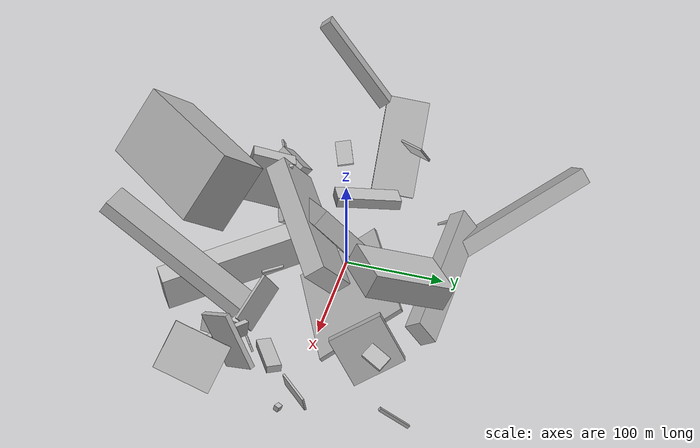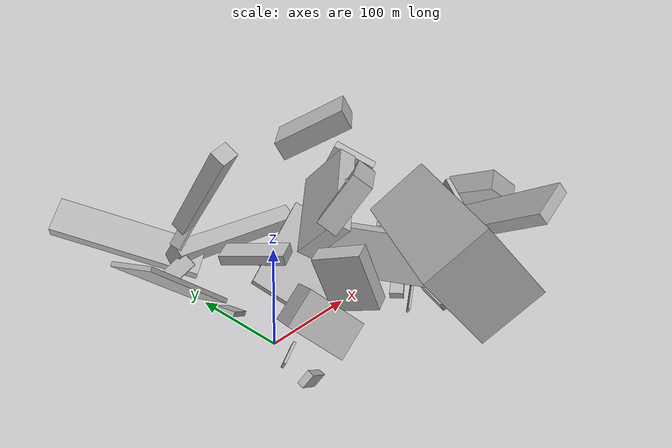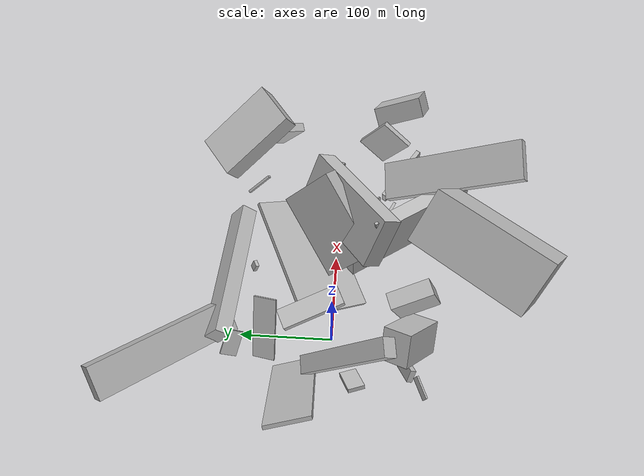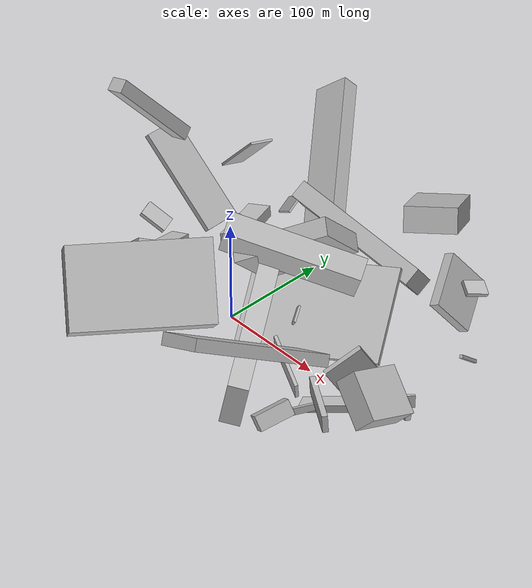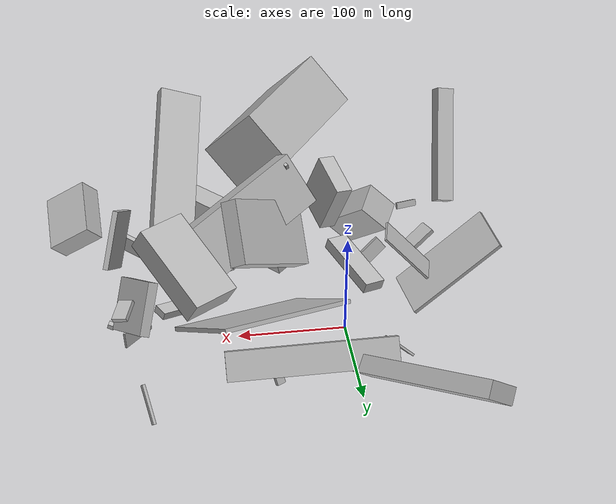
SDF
<sdf version="1.6">
 <world name="default">
  <model name="building_1">
   <static>0</static>
   <pose>-15.40946905120093 48.489235072548475 83.47796572263684 0.6606610286150101 1.3319498400195333 -0.47602117565657454</pose>
   <link name="link">
    <gravity>0</gravity>
    <pose>0 0 31.5 0 0 0</pose>
    <collision name="collision"><geometry><box><size>10 20 63</size></box></geometry></collision>
    <visual name="visual">
     <cast_shadows>0</cast_shadows>
     <geometry><box><size>10 20 63</size></box></geometry>
     <material>
      <script>
       <uri>model://HANNAS_wall/materials/scripts</uri>
       <uri>model://HANNAS_wall/materials/textures</uri>
       <name>vrc/HANNAS_wall</name>
      </script>
     </material>
    </visual>
   </link>
  </model>
  <model name="building_5">
   <static>0</static>
   <pose>4.289686830241401 106.98644001515282 44.70392333417334 -1.091598469408559 0.807118646782974 1.0866225300215115</pose>
   <link name="link">
    <gravity>0</gravity>
    <pose>0 0 75.0 0 0 0</pose>
    <collision name="collision"><geometry><box><size>16 34 150</size></box></geometry></collision>
    <visual name="visual">
     <cast_shadows>0</cast_shadows>
     <geometry><box><size>16 34 150</size></box></geometry>
     <material>
      <script>
       <uri>model://HANNAS_wall/materials/scripts</uri>
       <uri>model://HANNAS_wall/materials/textures</uri>
       <name>vrc/HANNAS_wall</name>
      </script>
     </material>
    </visual>
   </link>
  </model>
  <model name="building_6">
   <static>0</static>
   <pose>122.95587060061723 104.81987621062243 53.38466403227626 1.4836463431051559 -0.9303164788773728 -1.551403772637376</pose>
   <link name="link">
    <gravity>0</gravity>
    <pose>0 0 75.0 0 0 0</pose>
    <collision name="collision"><geometry><box><size>26 17 150</size></box></geometry></collision>
    <visual name="visual">
     <cast_shadows>0</cast_shadows>
     <geometry><box><size>26 17 150</size></box></geometry>
     <material>
      <script>
       <uri>model://HANNAS_wall/materials/scripts</uri>
       <uri>model://HANNAS_wall/materials/textures</uri>
       <name>vrc/HANNAS_wall</name>
      </script>
     </material>
    </visual>
   </link>
  </model>
  <model name="building_13">
   <static>0</static>
   <pose>98.34963933505558 -73.62403496290293 56.5721595581413 -0.11014615248948859 -0.19115786663829787 -2.481758304729141</pose>
   <link name="link">
    <gravity>0</gravity>
    <pose>0 0 22.5 0 0 0</pose>
    <collision name="collision"><geometry><box><size>18 150 45</size></box></geometry></collision>
    <visual name="visual">
     <cast_shadows>0</cast_shadows>
     <geometry><box><size>18 150 45</size></box></geometry>
     <material>
      <script>
       <uri>model://HANNAS_wall/materials/scripts</uri>
       <uri>model://HANNAS_wall/materials/textures</uri>
       <name>vrc/HANNAS_wall</name>
      </script>
     </material>
    </visual>
   </link>
  </model>
  <model name="building_16">
   <static>0</static>
   <pose>155.37633494674714 -52.24556168026713 80.04553700217986 0.9869160135221994 -0.36446205391433656 0.06837988870615896</pose>
   <link name="link">
    <gravity>0</gravity>
    <pose>0 0 75.0 0 0 0</pose>
    <collision name="collision"><geometry><box><size>40 11 150</size></box></geometry></collision>
    <visual name="visual">
     <cast_shadows>0</cast_shadows>
     <geometry><box><size>40 11 150</size></box></geometry>
     <material>
      <script>
       <uri>model://HANNAS_wall/materials/scripts</uri>
       <uri>model://HANNAS_wall/materials/textures</uri>
       <name>vrc/HANNAS_wall</name>
      </script>
     </material>
    </visual>
   </link>
  </model>
  <model name="building_23">
   <static>0</static>
   <pose>80.61699406453974 -93.43775193594135 138.2223505600222 -1.549271311401299 0.7446437284315558 2.5178109987744084</pose>
   <link name="link">
    <gravity>0</gravity>
    <pose>0 0 60.5 0 0 0</pose>
    <collision name="collision"><geometry><box><size>55 71 121</size></box></geometry></collision>
    <visual name="visual">
     <cast_shadows>0</cast_shadows>
     <geometry><box><size>55 71 121</size></box></geometry>
     <material>
      <script>
       <uri>model://HANNAS_wall/materials/scripts</uri>
       <uri>model://HANNAS_wall/materials/textures</uri>
       <name>vrc/HANNAS_wall</name>
      </script>
     </material>
    </visual>
   </link>
  </model>
  <model name="building_48">
   <static>0</static>
   <pose>80.46253854953413 26.82059748431923 41.625632989670194 0.19988512551552537 0.5365792366010784 -1.025870557734511</pose>
   <link name="link">
    <gravity>0</gravity>
    <pose>0 0 2.0 0 0 0</pose>
    <collision name="collision"><geometry><box><size>88 134 4</size></box></geometry></collision>
    <visual name="visual">
     <cast_shadows>0</cast_shadows>
     <geometry><box><size>88 134 4</size></box></geometry>
     <material>
      <script>
       <uri>model://HANNAS_wall/materials/scripts</uri>
       <uri>model://HANNAS_wall/materials/textures</uri>
       <name>vrc/HANNAS_wall</name>
      </script>
     </material>
    </visual>
   </link>
  </model>
  <model name="building_54">
   <static>0</static>
   <pose>-80.05383213189403 17.00630412462531 148.08835003347357 0.2850615688530017 0.6435261340882933 -1.2664166484833295</pose>
   <link name="link">
    <gravity>0</gravity>
    <pose>0 0 49.5 0 0 0</pose>
    <collision name="collision"><geometry><box><size>12 15 99</size></box></geometry></collision>
    <visual name="visual">
     <cast_shadows>0</cast_shadows>
     <geometry><box><size>12 15 99</size></box></geometry>
     <material>
      <script>
       <uri>model://HANNAS_wall/materials/scripts</uri>
       <uri>model://HANNAS_wall/materials/textures</uri>
       <name>vrc/HANNAS_wall</name>
      </script>
     </material>
    </visual>
   </link>
  </model>
  <model name="building_55">
   <static>0</static>
   <pose>156.18679675433722 -37.46236960588267 15.659394102046134 1.995067630508451 -1.3264599779774964 -3.0171825056131585</pose>
   <link name="link">
    <gravity>0</gravity>
    <pose>0 0 7.0 0 0 0</pose>
    <collision name="collision"><geometry><box><size>7 45 14</size></box></geometry></collision>
    <visual name="visual">
     <cast_shadows>0</cast_shadows>
     <geometry><box><size>7 45 14</size></box></geometry>
     <material>
      <script>
       <uri>model://HANNAS_wall/materials/scripts</uri>
       <uri>model://HANNAS_wall/materials/textures</uri>
       <name>vrc/HANNAS_wall</name>
      </script>
     </material>
    </visual>
   </link>
  </model>
  <model name="building_58">
   <static>0</static>
   <pose>-48.60329342203451 33.530997850438666 58.62351419822461 -0.8371402605545655 0.19283518145717943 1.7834337465432335</pose>
   <link name="link">
    <gravity>0</gravity>
    <pose>0 0 49.0 0 0 0</pose>
    <collision name="collision"><geometry><box><size>43 4 98</size></box></geometry></collision>
    <visual name="visual">
     <cast_shadows>0</cast_shadows>
     <geometry><box><size>43 4 98</size></box></geometry>
     <material>
      <script>
       <uri>model://HANNAS_wall/materials/scripts</uri>
       <uri>model://HANNAS_wall/materials/textures</uri>
       <name>vrc/HANNAS_wall</name>
      </script>
     </material>
    </visual>
   </link>
  </model>
  <model name="building_66">
   <static>0</static>
   <pose>206.36857441218416 84.99798209384137 105.91505665190452 -0.3056437334058563 0.2943091938593217 -0.4847127867527309</pose>
   <link name="link">
    <gravity>0</gravity>
    <pose>0 0 2.0 0 0 0</pose>
    <collision name="collision"><geometry><box><size>14 20 4</size></box></geometry></collision>
    <visual name="visual">
     <cast_shadows>0</cast_shadows>
     <geometry><box><size>14 20 4</size></box></geometry>
     <material>
      <script>
       <uri>model://HANNAS_wall/materials/scripts</uri>
       <uri>model://HANNAS_wall/materials/textures</uri>
       <name>vrc/HANNAS_wall</name>
      </script>
     </material>
    </visual>
   </link>
  </model>
  <model name="building_67">
   <static>0</static>
   <pose>236.26912871465848 -69.207291003848 92.83981992433951 0.679971490077157 0.40630839485512343 1.5900715310694389</pose>
   <link name="link">
    <gravity>0</gravity>
    <pose>0 0 10.5 0 0 0</pose>
    <collision name="collision"><geometry><box><size>51 43 21</size></box></geometry></collision>
    <visual name="visual">
     <cast_shadows>0</cast_shadows>
     <geometry><box><size>51 43 21</size></box></geometry>
     <material>
      <script>
       <uri>model://HANNAS_wall/materials/scripts</uri>
       <uri>model://HANNAS_wall/materials/textures</uri>
       <name>vrc/HANNAS_wall</name>
      </script>
     </material>
    </visual>
   </link>
  </model>
  <model name="building_68">
   <static>0</static>
   <pose>136.2314211095566 22.1531504785535 112.04480507822103 -1.2645274393351569 -0.5604713890313074 2.0086209131815425</pose>
   <link name="link">
    <gravity>0</gravity>
    <pose>0 0 60.0 0 0 0</pose>
    <collision name="collision"><geometry><box><size>20 51 120</size></box></geometry></collision>
    <visual name="visual">
     <cast_shadows>0</cast_shadows>
     <geometry><box><size>20 51 120</size></box></geometry>
     <material>
      <script>
       <uri>model://HANNAS_wall/materials/scripts</uri>
       <uri>model://HANNAS_wall/materials/textures</uri>
       <name>vrc/HANNAS_wall</name>
      </script>
     </material>
    </visual>
   </link>
  </model>
  <model name="building_70">
   <static>0</static>
   <pose>69.45376618046348 8.531860798503935 122.56746418063062 2.436321279952977 0.799773913681341 1.6649473739104743</pose>
   <link name="link">
    <gravity>0</gravity>
    <pose>0 0 8.5 0 0 0</pose>
    <collision name="collision"><geometry><box><size>58 88 17</size></box></geometry></collision>
    <visual name="visual">
     <cast_shadows>0</cast_shadows>
     <geometry><box><size>58 88 17</size></box></geometry>
     <material>
      <script>
       <uri>model://HANNAS_wall/materials/scripts</uri>
       <uri>model://HANNAS_wall/materials/textures</uri>
       <name>vrc/HANNAS_wall</name>
      </script>
     </material>
    </visual>
   </link>
  </model>
  <model name="building_79">
   <static>0</static>
   <pose>-30.995983453410073 -88.07443100885594 80.44082790525438 2.050788573550083 -0.6550917459019588 2.3577022883496452</pose>
   <link name="link">
    <gravity>0</gravity>
    <pose>0 0 14.5 0 0 0</pose>
    <collision name="collision"><geometry><box><size>53 33 29</size></box></geometry></collision>
    <visual name="visual">
     <cast_shadows>0</cast_shadows>
     <geometry><box><size>53 33 29</size></box></geometry>
     <material>
      <script>
       <uri>model://HANNAS_wall/materials/scripts</uri>
       <uri>model://HANNAS_wall/materials/textures</uri>
       <name>vrc/HANNAS_wall</name>
      </script>
     </material>
    </visual>
   </link>
  </model>
  <model name="building_88">
   <static>0</static>
   <pose>13.241561816284616 -84.5823883472393 76.72956523800377 -0.3337596357875748 -0.15905872641439406 0.343769307282082</pose>
   <link name="link">
    <gravity>0</gravity>
    <pose>0 0 26.0 0 0 0</pose>
    <collision name="collision"><geometry><box><size>16 42 52</size></box></geometry></collision>
    <visual name="visual">
     <cast_shadows>0</cast_shadows>
     <geometry><box><size>16 42 52</size></box></geometry>
     <material>
      <script>
       <uri>model://HANNAS_wall/materials/scripts</uri>
       <uri>model://HANNAS_wall/materials/textures</uri>
       <name>vrc/HANNAS_wall</name>
      </script>
     </material>
    </visual>
   </link>
  </model>
  <model name="building_97">
   <static>0</static>
   <pose>70.67258551537222 88.15458058908979 21.701097660683825 1.6948431244442042 1.089427934967056 2.1486880990023467</pose>
   <link name="link">
    <gravity>0</gravity>
    <pose>0 0 4.0 0 0 0</pose>
    <collision name="collision"><geometry><box><size>9 4 8</size></box></geometry></collision>
    <visual name="visual">
     <cast_shadows>0</cast_shadows>
     <geometry><box><size>9 4 8</size></box></geometry>
     <material>
      <script>
       <uri>model://HANNAS_wall/materials/scripts</uri>
       <uri>model://HANNAS_wall/materials/textures</uri>
       <name>vrc/HANNAS_wall</name>
      </script>
     </material>
    </visual>
   </link>
  </model>
  <model name="building_99">
   <static>0</static>
   <pose>201.8821804488873 87.42141000606843 84.74661941358139 -0.5004963259816101 -0.4405444479841879 2.075715463386686</pose>
   <link name="link">
    <gravity>0</gravity>
    <pose>0 0 23.0 0 0 0</pose>
    <collision name="collision"><geometry><box><size>49 9 46</size></box></geometry></collision>
    <visual name="visual">
     <cast_shadows>0</cast_shadows>
     <geometry><box><size>49 9 46</size></box></geometry>
     <material>
      <script>
       <uri>model://HANNAS_wall/materials/scripts</uri>
       <uri>model://HANNAS_wall/materials/textures</uri>
       <name>vrc/HANNAS_wall</name>
      </script>
     </material>
    </visual>
   </link>
  </model>
  <model name="building_103">
   <static>0</static>
   <pose>-81.48954208654484 -90.74629809255713 72.93078899991801 -1.2257197509170887 -1.1033720912877427 -1.4648821203056674</pose>
   <link name="link">
    <gravity>0</gravity>
    <pose>0 0 11.0 0 0 0</pose>
    <collision name="collision"><geometry><box><size>6 2 22</size></box></geometry></collision>
    <visual name="visual">
     <cast_shadows>0</cast_shadows>
     <geometry><box><size>6 2 22</size></box></geometry>
     <material>
      <script>
       <uri>model://HANNAS_wall/materials/scripts</uri>
       <uri>model://HANNAS_wall/materials/textures</uri>
       <name>vrc/HANNAS_wall</name>
      </script>
     </material>
    </visual>
   </link>
  </model>
  <model name="building_111">
   <static>0</static>
   <pose>140.31752526973222 -56.83170109118494 18.8012843312871 2.619992918455076 -0.22146936750861623 2.196610769310587</pose>
   <link name="link">
    <gravity>0</gravity>
    <pose>0 0 4.0 0 0 0</pose>
    <collision name="collision"><geometry><box><size>2 41 8</size></box></geometry></collision>
    <visual name="visual">
     <cast_shadows>0</cast_shadows>
     <geometry><box><size>2 41 8</size></box></geometry>
     <material>
      <script>
       <uri>model://HANNAS_wall/materials/scripts</uri>
       <uri>model://HANNAS_wall/materials/textures</uri>
       <name>vrc/HANNAS_wall</name>
      </script>
     </material>
    </visual>
   </link>
  </model>
  <model name="building_125">
   <static>0</static>
   <pose>51.985653175898065 -38.000208938351314 162.10600013467663 3.0534058186627764 0.3005348341597385 0.49769247578533526</pose>
   <link name="link">
    <gravity>0</gravity>
    <pose>0 0 7.0 0 0 0</pose>
    <collision name="collision"><geometry><box><size>3 5 14</size></box></geometry></collision>
    <visual name="visual">
     <cast_shadows>0</cast_shadows>
     <geometry><box><size>3 5 14</size></box></geometry>
     <material>
      <script>
       <uri>model://HANNAS_wall/materials/scripts</uri>
       <uri>model://HANNAS_wall/materials/textures</uri>
       <name>vrc/HANNAS_wall</name>
      </script>
     </material>
    </visual>
   </link>
  </model>
  <model name="building_128">
   <static>0</static>
   <pose>-30.584149638863096 97.73284862911744 55.55224670819952 -2.477087786747604 -0.613300651380852 -0.32569316392600334</pose>
   <link name="link">
    <gravity>0</gravity>
    <pose>0 0 1.0 0 0 0</pose>
    <collision name="collision"><geometry><box><size>26 17 2</size></box></geometry></collision>
    <visual name="visual">
     <cast_shadows>0</cast_shadows>
     <geometry><box><size>26 17 2</size></box></geometry>
     <material>
      <script>
       <uri>model://HANNAS_wall/materials/scripts</uri>
       <uri>model://HANNAS_wall/materials/textures</uri>
       <name>vrc/HANNAS_wall</name>
      </script>
     </material>
    </visual>
   </link>
  </model>
  <model name="building_139">
   <static>0</static>
   <pose>217.31726785374093 1.140584887513841 23.88861137151204 1.0836899342227186 1.237302452437148 -0.8502745471359223</pose>
   <link name="link">
    <gravity>0</gravity>
    <pose>0 0 2.5 0 0 0</pose>
    <collision name="collision"><geometry><box><size>5 6 5</size></box></geometry></collision>
    <visual name="visual">
     <cast_shadows>0</cast_shadows>
     <geometry><box><size>5 6 5</size></box></geometry>
     <material>
      <script>
       <uri>model://HANNAS_wall/materials/scripts</uri>
       <uri>model://HANNAS_wall/materials/textures</uri>
       <name>vrc/HANNAS_wall</name>
      </script>
     </material>
    </visual>
   </link>
  </model>
  <model name="building_144">
   <static>0</static>
   <pose>113.19137773244773 -27.27358211480465 94.61570246747 1.6429127436942883 0.5154965362951411 0.6327106436504552</pose>
   <link name="link">
    <gravity>0</gravity>
    <pose>0 0 10.0 0 0 0</pose>
    <collision name="collision"><geometry><box><size>2 4 20</size></box></geometry></collision>
    <visual name="visual">
     <cast_shadows>0</cast_shadows>
     <geometry><box><size>2 4 20</size></box></geometry>
     <material>
      <script>
       <uri>model://HANNAS_wall/materials/scripts</uri>
       <uri>model://HANNAS_wall/materials/textures</uri>
       <name>vrc/HANNAS_wall</name>
      </script>
     </material>
    </visual>
   </link>
  </model>
  <model name="building_148">
   <static>0</static>
   <pose>146.6807742978146 -85.67996751005768 31.193247455256056 -2.1796214930574886 -0.21621869851921044 1.286283621517936</pose>
   <link name="link">
    <gravity>0</gravity>
    <pose>0 0 6.5 0 0 0</pose>
    <collision name="collision"><geometry><box><size>32 14 13</size></box></geometry></collision>
    <visual name="visual">
     <cast_shadows>0</cast_shadows>
     <geometry><box><size>32 14 13</size></box></geometry>
     <material>
      <script>
       <uri>model://HANNAS_wall/materials/scripts</uri>
       <uri>model://HANNAS_wall/materials/textures</uri>
       <name>vrc/HANNAS_wall</name>
      </script>
     </material>
    </visual>
   </link>
  </model>
  <model name="building_151">
   <static>0</static>
   <pose>154.8317177001633 -50.53681467321019 50.01281258590803 -1.3771754173134392 0.029435243010606748 -2.1752483556668767</pose>
   <link name="link">
    <gravity>0</gravity>
    <pose>0 0 33.5 0 0 0</pose>
    <collision name="collision"><geometry><box><size>5 15 67</size></box></geometry></collision>
    <visual name="visual">
     <cast_shadows>0</cast_shadows>
     <geometry><box><size>5 15 67</size></box></geometry>
     <material>
      <script>
       <uri>model://HANNAS_wall/materials/scripts</uri>
       <uri>model://HANNAS_wall/materials/textures</uri>
       <name>vrc/HANNAS_wall</name>
      </script>
     </material>
    </visual>
   </link>
  </model>
  <model name="building_152">
   <static>0</static>
   <pose>-42.243804634300865 58.05840024323976 127.37731637502449 2.8825414732515915 -0.8542668973682527 -0.02990349267776302</pose>
   <link name="link">
    <gravity>0</gravity>
    <pose>0 0 1.0 0 0 0</pose>
    <collision name="collision"><geometry><box><size>59 21 2</size></box></geometry></collision>
    <visual name="visual">
     <cast_shadows>0</cast_shadows>
     <geometry><box><size>59 21 2</size></box></geometry>
     <material>
      <script>
       <uri>model://HANNAS_wall/materials/scripts</uri>
       <uri>model://HANNAS_wall/materials/textures</uri>
       <name>vrc/HANNAS_wall</name>
      </script>
     </material>
    </visual>
   </link>
  </model>
  <model name="building_154">
   <static>0</static>
   <pose>211.76045204663217 -35.46231341097467 63.3696551069122 -0.022130742940433074 -0.5469007053793699 1.138379617640093</pose>
   <link name="link">
    <gravity>0</gravity>
    <pose>0 0 27.0 0 0 0</pose>
    <collision name="collision"><geometry><box><size>36 5 54</size></box></geometry></collision>
    <visual name="visual">
     <cast_shadows>0</cast_shadows>
     <geometry><box><size>36 5 54</size></box></geometry>
     <material>
      <script>
       <uri>model://HANNAS_wall/materials/scripts</uri>
       <uri>model://HANNAS_wall/materials/textures</uri>
       <name>vrc/HANNAS_wall</name>
      </script>
     </material>
    </visual>
   </link>
  </model>
  <model name="building_156">
   <static>0</static>
   <pose>-60.566542531889056 -18.09171566325947 75.63389793545419 -1.0223362756614274 -0.10653327253026407 1.9258469181746345</pose>
   <link name="link">
    <gravity>0</gravity>
    <pose>0 0 12.5 0 0 0</pose>
    <collision name="collision"><geometry><box><size>16 4 25</size></box></geometry></collision>
    <visual name="visual">
     <cast_shadows>0</cast_shadows>
     <geometry><box><size>16 4 25</size></box></geometry>
     <material>
      <script>
       <uri>model://HANNAS_wall/materials/scripts</uri>
       <uri>model://HANNAS_wall/materials/textures</uri>
       <name>vrc/HANNAS_wall</name>
      </script>
     </material>
    </visual>
   </link>
  </model>
  <model name="building_159">
   <static>0</static>
   <pose>193.85933069164477 6.022325897140262 28.910863851737595 -3.11209946287581 0.13446222380076758 -0.7472950143326912</pose>
   <link name="link">
    <gravity>0</gravity>
    <pose>0 0 7.5 0 0 0</pose>
    <collision name="collision"><geometry><box><size>2 36 15</size></box></geometry></collision>
    <visual name="visual">
     <cast_shadows>0</cast_shadows>
     <geometry><box><size>2 36 15</size></box></geometry>
     <material>
      <script>
       <uri>model://HANNAS_wall/materials/scripts</uri>
       <uri>model://HANNAS_wall/materials/textures</uri>
       <name>vrc/HANNAS_wall</name>
      </script>
     </material>
    </visual>
   </link>
  </model>
  <model name="building_161">
   <static>0</static>
   <pose>194.0827532514985 86.19352271450981 25.112686999950274 2.8291153835533795 -0.7726832636939059 2.274599302241918</pose>
   <link name="link">
    <gravity>0</gravity>
    <pose>0 0 18.0 0 0 0</pose>
    <collision name="collision"><geometry><box><size>3 3 36</size></box></geometry></collision>
    <visual name="visual">
     <cast_shadows>0</cast_shadows>
     <geometry><box><size>3 3 36</size></box></geometry>
     <material>
      <script>
       <uri>model://HANNAS_wall/materials/scripts</uri>
       <uri>model://HANNAS_wall/materials/textures</uri>
       <name>vrc/HANNAS_wall</name>
      </script>
     </material>
    </visual>
   </link>
  </model>
  <model name="building_165">
   <static>0</static>
   <pose>122.70386269846495 -52.24261054554307 49.63647958804822 1.3444898596970682 -0.45306638920183306 2.8010435954311714</pose>
   <link name="link">
    <gravity>0</gravity>
    <pose>0 0 1.5 0 0 0</pose>
    <collision name="collision"><geometry><box><size>48 27 3</size></box></geometry></collision>
    <visual name="visual">
     <cast_shadows>0</cast_shadows>
     <geometry><box><size>48 27 3</size></box></geometry>
     <material>
      <script>
       <uri>model://HANNAS_wall/materials/scripts</uri>
       <uri>model://HANNAS_wall/materials/textures</uri>
       <name>vrc/HANNAS_wall</name>
      </script>
     </material>
    </visual>
   </link>
  </model>
  <model name="building_179">
   <static>0</static>
   <pose>136.90628739334528 77.80635282046265 151.85961662140204 1.4058342797672938 -1.0547807288154987 2.3697671480423383</pose>
   <link name="link">
    <gravity>0</gravity>
    <pose>0 0 22.5 0 0 0</pose>
    <collision name="collision"><geometry><box><size>22 80 45</size></box></geometry></collision>
    <visual name="visual">
     <cast_shadows>0</cast_shadows>
     <geometry><box><size>22 80 45</size></box></geometry>
     <material>
      <script>
       <uri>model://HANNAS_wall/materials/scripts</uri>
       <uri>model://HANNAS_wall/materials/textures</uri>
       <name>vrc/HANNAS_wall</name>
      </script>
     </material>
    </visual>
   </link>
  </model>
  <model name="building_198">
   <static>0</static>
   <pose>-35.45028602310852 -80.53120520132995 24.479769247432507 1.082554144022942 -0.6281718067089259 -2.7894036919082645</pose>
   <link name="link">
    <gravity>0</gravity>
    <pose>0 0 3.0 0 0 0</pose>
    <collision name="collision"><geometry><box><size>33 13 6</size></box></geometry></collision>
    <visual name="visual">
     <cast_shadows>0</cast_shadows>
     <geometry><box><size>33 13 6</size></box></geometry>
     <material>
      <script>
       <uri>model://HANNAS_wall/materials/scripts</uri>
       <uri>model://HANNAS_wall/materials/textures</uri>
       <name>vrc/HANNAS_wall</name>
      </script>
     </material>
    </visual>
   </link>
  </model>
 </world>
</sdf>
